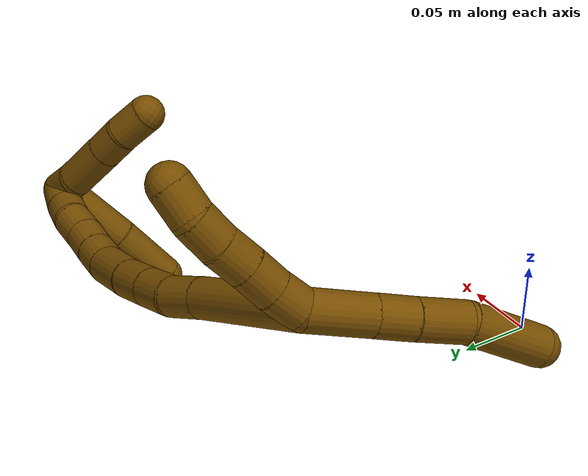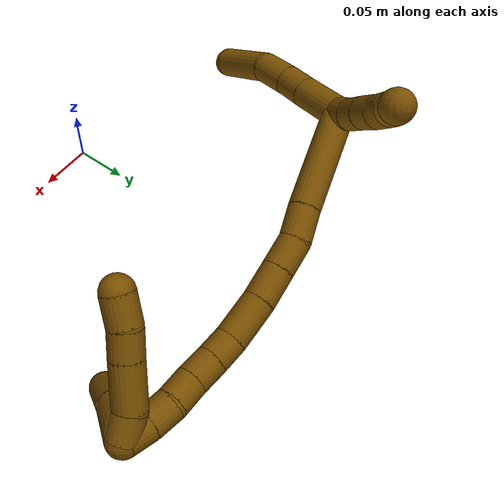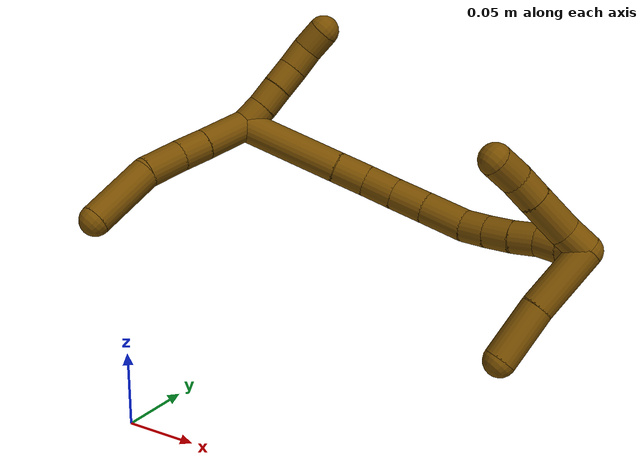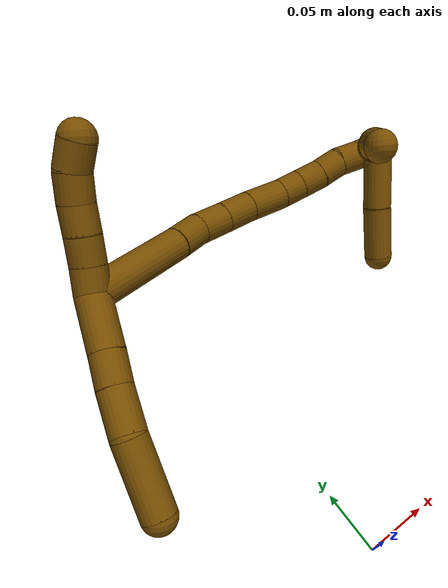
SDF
<sdf version="1.7">
 <world name="default">
  <model name="12">
   <static>0</static>
   <link name="12">
    <collision name="collision-cylinder-e_1_2_8">
     <pose>-0.001433 -0.009807 -0.017662 2.63473 -0.070803 -0.271799</pose>
     <geometry><cylinder><radius>0.0125</radius><length>0.040506</length></cylinder></geometry>
     <surface>
      <friction><ode><mu>1.16</mu><mu2>1.16</mu2><slip1>0</slip1><slip2>0</slip2></ode></friction>
      <contact><ode><kp>1e+06</kp><kd>1</kd><max_vel>0</max_vel><min_depth>0.001</min_depth></ode></contact>
     </surface>
    </collision>
    <visual name="visual-cylinder-e_1_2_8">
     <pose>-0.001433 -0.009807 -0.017662 2.63473 -0.070803 -0.271799</pose>
     <geometry><cylinder><radius>0.0125</radius><length>0.040506</length></cylinder></geometry>
     <material><ambient>0.466667 0.301961 0 1</ambient></material>
    </visual>
    <collision name="collision-cylinder-e_2_8_9">
     <pose>-0.004006 -0.0253 -0.045598 2.63609 -0.096826 -0.370877</pose>
     <geometry><cylinder><radius>0.0125</radius><length>0.023595</length></cylinder></geometry>
     <surface>
      <friction><ode><mu>1.16</mu><mu2>1.16</mu2><slip1>0</slip1><slip2>0</slip2></ode></friction>
      <contact><ode><kp>1e+06</kp><kd>1</kd><max_vel>0</max_vel><min_depth>0.001</min_depth></ode></contact>
     </surface>
    </collision>
    <visual name="visual-cylinder-e_2_8_9">
     <pose>-0.004006 -0.0253 -0.045598 2.63609 -0.096826 -0.370877</pose>
     <geometry><cylinder><radius>0.0125</radius><length>0.023595</length></cylinder></geometry>
     <material><ambient>0.466667 0.301961 0 1</ambient></material>
    </visual>
    <collision name="collision-cylinder-e_3_9_10">
     <pose>-0.005791 -0.038856 -0.069536 2.61908 -0.040862 -0.152555</pose>
     <geometry><cylinder><radius>0.0125</radius><length>0.031564</length></cylinder></geometry>
     <surface>
      <friction><ode><mu>1.16</mu><mu2>1.16</mu2><slip1>0</slip1><slip2>0</slip2></ode></friction>
      <contact><ode><kp>1e+06</kp><kd>1</kd><max_vel>0</max_vel><min_depth>0.001</min_depth></ode></contact>
     </surface>
    </collision>
    <visual name="visual-cylinder-e_3_9_10">
     <pose>-0.005791 -0.038856 -0.069536 2.61908 -0.040862 -0.152555</pose>
     <geometry><cylinder><radius>0.0125</radius><length>0.031564</length></cylinder></geometry>
     <material><ambient>0.466667 0.301961 0 1</ambient></material>
    </visual>
    <collision name="collision-cylinder-e_4_10_6">
     <pose>-0.003051 -0.054351 -0.109056 2.85478 0.124914 0.817424</pose>
     <geometry><cylinder><radius>0.0125</radius><length>0.054335</length></cylinder></geometry>
     <surface>
      <friction><ode><mu>1.16</mu><mu2>1.16</mu2><slip1>0</slip1><slip2>0</slip2></ode></friction>
      <contact><ode><kp>1e+06</kp><kd>1</kd><max_vel>0</max_vel><min_depth>0.001</min_depth></ode></contact>
     </surface>
    </collision>
    <visual name="visual-cylinder-e_4_10_6">
     <pose>-0.003051 -0.054351 -0.109056 2.85478 0.124914 0.817424</pose>
     <geometry><cylinder><radius>0.0125</radius><length>0.054335</length></cylinder></geometry>
     <material><ambient>0.466667 0.301961 0 1</ambient></material>
    </visual>
    <collision name="collision-cylinder-e_1_2_11">
     <pose>8.2e-05 0.000133 0.009999 -0.013305 0.00823 -5.5e-05</pose>
     <geometry><cylinder><radius>0.0125</radius><length>0.02</length></cylinder></geometry>
     <surface>
      <friction><ode><mu>1.16</mu><mu2>1.16</mu2><slip1>0</slip1><slip2>0</slip2></ode></friction>
      <contact><ode><kp>1e+06</kp><kd>1</kd><max_vel>0</max_vel><min_depth>0.001</min_depth></ode></contact>
     </surface>
    </collision>
    <visual name="visual-cylinder-e_1_2_11">
     <pose>8.2e-05 0.000133 0.009999 -0.013305 0.00823 -5.5e-05</pose>
     <geometry><cylinder><radius>0.0125</radius><length>0.02</length></cylinder></geometry>
     <material><ambient>0.466667 0.301961 0 1</ambient></material>
    </visual>
    <collision name="collision-cylinder-e_2_11_12">
     <pose>-0.000418 -0.000508 0.029951 0.077619 -0.058255 -0.002263</pose>
     <geometry><cylinder><radius>0.0125</radius><length>0.02</length></cylinder></geometry>
     <surface>
      <friction><ode><mu>1.16</mu><mu2>1.16</mu2><slip1>0</slip1><slip2>0</slip2></ode></friction>
      <contact><ode><kp>1e+06</kp><kd>1</kd><max_vel>0</max_vel><min_depth>0.001</min_depth></ode></contact>
     </surface>
    </collision>
    <visual name="visual-cylinder-e_2_11_12">
     <pose>-0.000418 -0.000508 0.029951 0.077619 -0.058255 -0.002263</pose>
     <geometry><cylinder><radius>0.0125</radius><length>0.02</length></cylinder></geometry>
     <material><ambient>0.466667 0.301961 0 1</ambient></material>
    </visual>
    <collision name="collision-cylinder-e_3_12_13">
     <pose>-0.001635 -0.001643 0.049877 0.036204 -0.063539 -0.001151</pose>
     <geometry><cylinder><radius>0.0125</radius><length>0.02</length></cylinder></geometry>
     <surface>
      <friction><ode><mu>1.16</mu><mu2>1.16</mu2><slip1>0</slip1><slip2>0</slip2></ode></friction>
      <contact><ode><kp>1e+06</kp><kd>1</kd><max_vel>0</max_vel><min_depth>0.001</min_depth></ode></contact>
     </surface>
    </collision>
    <visual name="visual-cylinder-e_3_12_13">
     <pose>-0.001635 -0.001643 0.049877 0.036204 -0.063539 -0.001151</pose>
     <geometry><cylinder><radius>0.0125</radius><length>0.02</length></cylinder></geometry>
     <material><ambient>0.466667 0.301961 0 1</ambient></material>
    </visual>
    <collision name="collision-cylinder-e_4_13_14">
     <pose>-0.002516 -0.003565 0.069724 0.156762 -0.024621 -0.001934</pose>
     <geometry><cylinder><radius>0.0125</radius><length>0.02</length></cylinder></geometry>
     <surface>
      <friction><ode><mu>1.16</mu><mu2>1.16</mu2><slip1>0</slip1><slip2>0</slip2></ode></friction>
      <contact><ode><kp>1e+06</kp><kd>1</kd><max_vel>0</max_vel><min_depth>0.001</min_depth></ode></contact>
     </surface>
    </collision>
    <visual name="visual-cylinder-e_4_13_14">
     <pose>-0.002516 -0.003565 0.069724 0.156762 -0.024621 -0.001934</pose>
     <geometry><cylinder><radius>0.0125</radius><length>0.02</length></cylinder></geometry>
     <material><ambient>0.466667 0.301961 0 1</ambient></material>
    </visual>
    <collision name="collision-cylinder-e_5_14_5">
     <pose>-0.00087 -0.008597 0.088784 0.361288 0.190374 0.034871</pose>
     <geometry><cylinder><radius>0.0125</radius><length>0.02</length></cylinder></geometry>
     <surface>
      <friction><ode><mu>1.16</mu><mu2>1.16</mu2><slip1>0</slip1><slip2>0</slip2></ode></friction>
      <contact><ode><kp>1e+06</kp><kd>1</kd><max_vel>0</max_vel><min_depth>0.001</min_depth></ode></contact>
     </surface>
    </collision>
    <visual name="visual-cylinder-e_5_14_5">
     <pose>-0.00087 -0.008597 0.088784 0.361288 0.190374 0.034871</pose>
     <geometry><cylinder><radius>0.0125</radius><length>0.02</length></cylinder></geometry>
     <material><ambient>0.466667 0.301961 0 1</ambient></material>
    </visual>
    <collision name="collision-cylinder-e_1_2_15">
     <pose>0.037975 0.010766 0.011419 -0.755953 1.1789 -0.519106</pose>
     <geometry><cylinder><radius>0.0125</radius><length>0.082181</length></cylinder></geometry>
     <surface>
      <friction><ode><mu>1.16</mu><mu2>1.16</mu2><slip1>0</slip1><slip2>0</slip2></ode></friction>
      <contact><ode><kp>1e+06</kp><kd>1</kd><max_vel>0</max_vel><min_depth>0.001</min_depth></ode></contact>
     </surface>
    </collision>
    <visual name="visual-cylinder-e_1_2_15">
     <pose>0.037975 0.010766 0.011419 -0.755953 1.1789 -0.519106</pose>
     <geometry><cylinder><radius>0.0125</radius><length>0.082181</length></cylinder></geometry>
     <material><ambient>0.466667 0.301961 0 1</ambient></material>
    </visual>
    <collision name="collision-cylinder-e_2_15_16">
     <pose>0.087825 0.025753 0.026704 -0.829437 1.12168 -0.539579</pose>
     <geometry><cylinder><radius>0.0125</radius><length>0.026365</length></cylinder></geometry>
     <surface>
      <friction><ode><mu>1.16</mu><mu2>1.16</mu2><slip1>0</slip1><slip2>0</slip2></ode></friction>
      <contact><ode><kp>1e+06</kp><kd>1</kd><max_vel>0</max_vel><min_depth>0.001</min_depth></ode></contact>
     </surface>
    </collision>
    <visual name="visual-cylinder-e_2_15_16">
     <pose>0.087825 0.025753 0.026704 -0.829437 1.12168 -0.539579</pose>
     <geometry><cylinder><radius>0.0125</radius><length>0.026365</length></cylinder></geometry>
     <material><ambient>0.466667 0.301961 0 1</ambient></material>
    </visual>
    <collision name="collision-cylinder-e_3_16_17">
     <pose>0.112256 0.031087 0.033552 -0.356811 1.32244 -0.278784</pose>
     <geometry><cylinder><radius>0.0125</radius><length>0.025906</length></cylinder></geometry>
     <surface>
      <friction><ode><mu>1.16</mu><mu2>1.16</mu2><slip1>0</slip1><slip2>0</slip2></ode></friction>
      <contact><ode><kp>1e+06</kp><kd>1</kd><max_vel>0</max_vel><min_depth>0.001</min_depth></ode></contact>
     </surface>
    </collision>
    <visual name="visual-cylinder-e_3_16_17">
     <pose>0.112256 0.031087 0.033552 -0.356811 1.32244 -0.278784</pose>
     <geometry><cylinder><radius>0.0125</radius><length>0.025906</length></cylinder></geometry>
     <material><ambient>0.466667 0.301961 0 1</ambient></material>
    </visual>
    <collision name="collision-cylinder-e_4_17_18">
     <pose>0.138053 0.03327 0.039804 -0.316768 1.31666 -0.245824</pose>
     <geometry><cylinder><radius>0.0125</radius><length>0.027362</length></cylinder></geometry>
     <surface>
      <friction><ode><mu>1.16</mu><mu2>1.16</mu2><slip1>0</slip1><slip2>0</slip2></ode></friction>
      <contact><ode><kp>1e+06</kp><kd>1</kd><max_vel>0</max_vel><min_depth>0.001</min_depth></ode></contact>
     </surface>
    </collision>
    <visual name="visual-cylinder-e_4_17_18">
     <pose>0.138053 0.03327 0.039804 -0.316768 1.31666 -0.245824</pose>
     <geometry><cylinder><radius>0.0125</radius><length>0.027362</length></cylinder></geometry>
     <material><ambient>0.466667 0.301961 0 1</ambient></material>
    </visual>
    <collision name="collision-cylinder-e_5_18_19">
     <pose>0.16848 0.034213 0.0468 0.034581 1.35708 0.027882</pose>
     <geometry><cylinder><radius>0.0125</radius><length>0.035172</length></cylinder></geometry>
     <surface>
      <friction><ode><mu>1.16</mu><mu2>1.16</mu2><slip1>0</slip1><slip2>0</slip2></ode></friction>
      <contact><ode><kp>1e+06</kp><kd>1</kd><max_vel>0</max_vel><min_depth>0.001</min_depth></ode></contact>
     </surface>
    </collision>
    <visual name="visual-cylinder-e_5_18_19">
     <pose>0.16848 0.034213 0.0468 0.034581 1.35708 0.027882</pose>
     <geometry><cylinder><radius>0.0125</radius><length>0.035172</length></cylinder></geometry>
     <material><ambient>0.466667 0.301961 0 1</ambient></material>
    </visual>
    <collision name="collision-cylinder-e_6_19_20">
     <pose>0.195031 0.032248 0.053802 0.510969 1.18952 0.349768</pose>
     <geometry><cylinder><radius>0.0125</radius><length>0.020179</length></cylinder></geometry>
     <surface>
      <friction><ode><mu>1.16</mu><mu2>1.16</mu2><slip1>0</slip1><slip2>0</slip2></ode></friction>
      <contact><ode><kp>1e+06</kp><kd>1</kd><max_vel>0</max_vel><min_depth>0.001</min_depth></ode></contact>
     </surface>
    </collision>
    <visual name="visual-cylinder-e_6_19_20">
     <pose>0.195031 0.032248 0.053802 0.510969 1.18952 0.349768</pose>
     <geometry><cylinder><radius>0.0125</radius><length>0.020179</length></cylinder></geometry>
     <material><ambient>0.466667 0.301961 0 1</ambient></material>
    </visual>
    <collision name="collision-cylinder-e_7_20_21">
     <pose>0.214109 0.027981 0.060744 0.585333 1.14545 0.383812</pose>
     <geometry><cylinder><radius>0.0125</radius><length>0.021326</length></cylinder></geometry>
     <surface>
      <friction><ode><mu>1.16</mu><mu2>1.16</mu2><slip1>0</slip1><slip2>0</slip2></ode></friction>
      <contact><ode><kp>1e+06</kp><kd>1</kd><max_vel>0</max_vel><min_depth>0.001</min_depth></ode></contact>
     </surface>
    </collision>
    <visual name="visual-cylinder-e_7_20_21">
     <pose>0.214109 0.027981 0.060744 0.585333 1.14545 0.383812</pose>
     <geometry><cylinder><radius>0.0125</radius><length>0.021326</length></cylinder></geometry>
     <material><ambient>0.466667 0.301961 0 1</ambient></material>
    </visual>
    <collision name="collision-cylinder-e_8_21_22">
     <pose>0.233029 0.023368 0.068889 0.453357 1.07494 0.273211</pose>
     <geometry><cylinder><radius>0.0125</radius><length>0.020937</length></cylinder></geometry>
     <surface>
      <friction><ode><mu>1.16</mu><mu2>1.16</mu2><slip1>0</slip1><slip2>0</slip2></ode></friction>
      <contact><ode><kp>1e+06</kp><kd>1</kd><max_vel>0</max_vel><min_depth>0.001</min_depth></ode></contact>
     </surface>
    </collision>
    <visual name="visual-cylinder-e_8_21_22">
     <pose>0.233029 0.023368 0.068889 0.453357 1.07494 0.273211</pose>
     <geometry><cylinder><radius>0.0125</radius><length>0.020937</length></cylinder></geometry>
     <material><ambient>0.466667 0.301961 0 1</ambient></material>
    </visual>
    <collision name="collision-cylinder-e_9_22_23">
     <pose>0.251827 0.018458 0.075685 0.866793 1.21345 0.621519</pose>
     <geometry><cylinder><radius>0.0125</radius><length>0.020474</length></cylinder></geometry>
     <surface>
      <friction><ode><mu>1.16</mu><mu2>1.16</mu2><slip1>0</slip1><slip2>0</slip2></ode></friction>
      <contact><ode><kp>1e+06</kp><kd>1</kd><max_vel>0</max_vel><min_depth>0.001</min_depth></ode></contact>
     </surface>
    </collision>
    <visual name="visual-cylinder-e_9_22_23">
     <pose>0.251827 0.018458 0.075685 0.866793 1.21345 0.621519</pose>
     <geometry><cylinder><radius>0.0125</radius><length>0.020474</length></cylinder></geometry>
     <material><ambient>0.466667 0.301961 0 1</ambient></material>
    </visual>
    <collision name="collision-cylinder-e_10_23_1">
     <pose>0.269909 0.011307 0.081058 0.966117 1.00658 0.562271</pose>
     <geometry><cylinder><radius>0.0125</radius><length>0.0201</length></cylinder></geometry>
     <surface>
      <friction><ode><mu>1.16</mu><mu2>1.16</mu2><slip1>0</slip1><slip2>0</slip2></ode></friction>
      <contact><ode><kp>1e+06</kp><kd>1</kd><max_vel>0</max_vel><min_depth>0.001</min_depth></ode></contact>
     </surface>
    </collision>
    <visual name="visual-cylinder-e_10_23_1">
     <pose>0.269909 0.011307 0.081058 0.966117 1.00658 0.562271</pose>
     <geometry><cylinder><radius>0.0125</radius><length>0.0201</length></cylinder></geometry>
     <material><ambient>0.466667 0.301961 0 1</ambient></material>
    </visual>
    <collision name="collision-cylinder-e_1_1_24">
     <pose>0.269317 0.001638 0.084047 1.58327 -1.04697 -1.05781</pose>
     <geometry><cylinder><radius>0.0125</radius><length>0.020982</length></cylinder></geometry>
     <surface>
      <friction><ode><mu>1.16</mu><mu2>1.16</mu2><slip1>0</slip1><slip2>0</slip2></ode></friction>
      <contact><ode><kp>1e+06</kp><kd>1</kd><max_vel>0</max_vel><min_depth>0.001</min_depth></ode></contact>
     </surface>
    </collision>
    <visual name="visual-cylinder-e_1_1_24">
     <pose>0.269317 0.001638 0.084047 1.58327 -1.04697 -1.05781</pose>
     <geometry><cylinder><radius>0.0125</radius><length>0.020982</length></cylinder></geometry>
     <material><ambient>0.466667 0.301961 0 1</ambient></material>
    </visual>
    <collision name="collision-cylinder-e_2_24_25">
     <pose>0.248126 -0.016416 0.083829 1.58272 -0.757282 -0.765511</pose>
     <geometry><cylinder><radius>0.0125</radius><length>0.035249</length></cylinder></geometry>
     <surface>
      <friction><ode><mu>1.16</mu><mu2>1.16</mu2><slip1>0</slip1><slip2>0</slip2></ode></friction>
      <contact><ode><kp>1e+06</kp><kd>1</kd><max_vel>0</max_vel><min_depth>0.001</min_depth></ode></contact>
     </surface>
    </collision>
    <visual name="visual-cylinder-e_2_24_25">
     <pose>0.248126 -0.016416 0.083829 1.58272 -0.757282 -0.765511</pose>
     <geometry><cylinder><radius>0.0125</radius><length>0.035249</length></cylinder></geometry>
     <material><ambient>0.466667 0.301961 0 1</ambient></material>
    </visual>
    <collision name="collision-cylinder-e_3_25_26">
     <pose>0.228778 -0.036592 0.083737 1.56264 -0.776617 -0.770918</pose>
     <geometry><cylinder><radius>0.0125</radius><length>0.020663</length></cylinder></geometry>
     <surface>
      <friction><ode><mu>1.16</mu><mu2>1.16</mu2><slip1>0</slip1><slip2>0</slip2></ode></friction>
      <contact><ode><kp>1e+06</kp><kd>1</kd><max_vel>0</max_vel><min_depth>0.001</min_depth></ode></contact>
     </surface>
    </collision>
    <visual name="visual-cylinder-e_3_25_26">
     <pose>0.228778 -0.036592 0.083737 1.56264 -0.776617 -0.770918</pose>
     <geometry><cylinder><radius>0.0125</radius><length>0.020663</length></cylinder></geometry>
     <material><ambient>0.466667 0.301961 0 1</ambient></material>
    </visual>
    <collision name="collision-cylinder-e_4_26_4">
     <pose>0.214845 -0.05329 0.082506 1.70826 -0.617754 -0.702191</pose>
     <geometry><cylinder><radius>0.0125</radius><length>0.023106</length></cylinder></geometry>
     <surface>
      <friction><ode><mu>1.16</mu><mu2>1.16</mu2><slip1>0</slip1><slip2>0</slip2></ode></friction>
      <contact><ode><kp>1e+06</kp><kd>1</kd><max_vel>0</max_vel><min_depth>0.001</min_depth></ode></contact>
     </surface>
    </collision>
    <visual name="visual-cylinder-e_4_26_4">
     <pose>0.214845 -0.05329 0.082506 1.70826 -0.617754 -0.702191</pose>
     <geometry><cylinder><radius>0.0125</radius><length>0.023106</length></cylinder></geometry>
     <material><ambient>0.466667 0.301961 0 1</ambient></material>
    </visual>
    <collision name="collision-cylinder-e_1_1_27">
     <pose>0.278104 0.008393 0.057047 -3.08596 -0.010965 0.389129</pose>
     <geometry><cylinder><radius>0.0125</radius><length>0.054219</length></cylinder></geometry>
     <surface>
      <friction><ode><mu>1.16</mu><mu2>1.16</mu2><slip1>0</slip1><slip2>0</slip2></ode></friction>
      <contact><ode><kp>1e+06</kp><kd>1</kd><max_vel>0</max_vel><min_depth>0.001</min_depth></ode></contact>
     </surface>
    </collision>
    <visual name="visual-cylinder-e_1_1_27">
     <pose>0.278104 0.008393 0.057047 -3.08596 -0.010965 0.389129</pose>
     <geometry><cylinder><radius>0.0125</radius><length>0.054219</length></cylinder></geometry>
     <material><ambient>0.466667 0.301961 0 1</ambient></material>
    </visual>
    <collision name="collision-cylinder-e_2_27_3">
     <pose>0.279478 0.01192 0.007241 -3.05297 0.073074 -1.3789</pose>
     <geometry><cylinder><radius>0.0125</radius><length>0.045781</length></cylinder></geometry>
     <surface>
      <friction><ode><mu>1.16</mu><mu2>1.16</mu2><slip1>0</slip1><slip2>0</slip2></ode></friction>
      <contact><ode><kp>1e+06</kp><kd>1</kd><max_vel>0</max_vel><min_depth>0.001</min_depth></ode></contact>
     </surface>
    </collision>
    <visual name="visual-cylinder-e_2_27_3">
     <pose>0.279478 0.01192 0.007241 -3.05297 0.073074 -1.3789</pose>
     <geometry><cylinder><radius>0.0125</radius><length>0.045781</length></cylinder></geometry>
     <material><ambient>0.466667 0.301961 0 1</ambient></material>
    </visual>
    <collision name="collision-sphere-3">
     <pose>0.28115 0.013941 -0.015499 0 -0 0</pose>
     <geometry><sphere><radius>0.0125</radius></sphere></geometry>
     <surface>
      <friction><ode><mu>1.16</mu><mu2>1.16</mu2><slip1>0</slip1><slip2>0</slip2></ode></friction>
      <contact><ode><kp>1e+06</kp><kd>1</kd><max_vel>0</max_vel><min_depth>0.001</min_depth></ode></contact>
     </surface>
    </collision>
    <visual name="visual-sphere-3">
     <pose>0.28115 0.013941 -0.015499 0 -0 0</pose>
     <geometry><sphere><radius>0.0125</radius></sphere></geometry>
     <material><ambient>0.466667 0.301961 0 1</ambient></material>
    </visual>
    <collision name="collision-sphere-27">
     <pose>0.277807 0.0099 0.029981 0 -0 0</pose>
     <geometry><sphere><radius>0.0125</radius></sphere></geometry>
     <surface>
      <friction><ode><mu>1.16</mu><mu2>1.16</mu2><slip1>0</slip1><slip2>0</slip2></ode></friction>
      <contact><ode><kp>1e+06</kp><kd>1</kd><max_vel>0</max_vel><min_depth>0.001</min_depth></ode></contact>
     </surface>
    </collision>
    <visual name="visual-sphere-27">
     <pose>0.277807 0.0099 0.029981 0 -0 0</pose>
     <geometry><sphere><radius>0.0125</radius></sphere></geometry>
     <material><ambient>0.466667 0.301961 0 1</ambient></material>
    </visual>
    <collision name="collision-sphere-4">
     <pose>0.208154 -0.062619 0.081216 0 -0 0</pose>
     <geometry><sphere><radius>0.0125</radius></sphere></geometry>
     <surface>
      <friction><ode><mu>1.16</mu><mu2>1.16</mu2><slip1>0</slip1><slip2>0</slip2></ode></friction>
      <contact><ode><kp>1e+06</kp><kd>1</kd><max_vel>0</max_vel><min_depth>0.001</min_depth></ode></contact>
     </surface>
    </collision>
    <visual name="visual-sphere-4">
     <pose>0.208154 -0.062619 0.081216 0 -0 0</pose>
     <geometry><sphere><radius>0.0125</radius></sphere></geometry>
     <material><ambient>0.466667 0.301961 0 1</ambient></material>
    </visual>
    <collision name="collision-sphere-26">
     <pose>0.221537 -0.043961 0.083797 0 -0 0</pose>
     <geometry><sphere><radius>0.0125</radius></sphere></geometry>
     <surface>
      <friction><ode><mu>1.16</mu><mu2>1.16</mu2><slip1>0</slip1><slip2>0</slip2></ode></friction>
      <contact><ode><kp>1e+06</kp><kd>1</kd><max_vel>0</max_vel><min_depth>0.001</min_depth></ode></contact>
     </surface>
    </collision>
    <visual name="visual-sphere-26">
     <pose>0.221537 -0.043961 0.083797 0 -0 0</pose>
     <geometry><sphere><radius>0.0125</radius></sphere></geometry>
     <material><ambient>0.466667 0.301961 0 1</ambient></material>
    </visual>
    <collision name="collision-sphere-25">
     <pose>0.236019 -0.029223 0.083676 0 -0 0</pose>
     <geometry><sphere><radius>0.0125</radius></sphere></geometry>
     <surface>
      <friction><ode><mu>1.16</mu><mu2>1.16</mu2><slip1>0</slip1><slip2>0</slip2></ode></friction>
      <contact><ode><kp>1e+06</kp><kd>1</kd><max_vel>0</max_vel><min_depth>0.001</min_depth></ode></contact>
     </surface>
    </collision>
    <visual name="visual-sphere-25">
     <pose>0.236019 -0.029223 0.083676 0 -0 0</pose>
     <geometry><sphere><radius>0.0125</radius></sphere></geometry>
     <material><ambient>0.466667 0.301961 0 1</ambient></material>
    </visual>
    <collision name="collision-sphere-24">
     <pose>0.260233 -0.003609 0.083982 0 -0 0</pose>
     <geometry><sphere><radius>0.0125</radius></sphere></geometry>
     <surface>
      <friction><ode><mu>1.16</mu><mu2>1.16</mu2><slip1>0</slip1><slip2>0</slip2></ode></friction>
      <contact><ode><kp>1e+06</kp><kd>1</kd><max_vel>0</max_vel><min_depth>0.001</min_depth></ode></contact>
     </surface>
    </collision>
    <visual name="visual-sphere-24">
     <pose>0.260233 -0.003609 0.083982 0 -0 0</pose>
     <geometry><sphere><radius>0.0125</radius></sphere></geometry>
     <material><ambient>0.466667 0.301961 0 1</ambient></material>
    </visual>
    <collision name="collision-sphere-1">
     <pose>0.278402 0.006885 0.084113 0 -0 0</pose>
     <geometry><sphere><radius>0.0125</radius></sphere></geometry>
     <surface>
      <friction><ode><mu>1.16</mu><mu2>1.16</mu2><slip1>0</slip1><slip2>0</slip2></ode></friction>
      <contact><ode><kp>1e+06</kp><kd>1</kd><max_vel>0</max_vel><min_depth>0.001</min_depth></ode></contact>
     </surface>
    </collision>
    <visual name="visual-sphere-1">
     <pose>0.278402 0.006885 0.084113 0 -0 0</pose>
     <geometry><sphere><radius>0.0125</radius></sphere></geometry>
     <material><ambient>0.466667 0.301961 0 1</ambient></material>
    </visual>
    <collision name="collision-sphere-23">
     <pose>0.261417 0.015728 0.078002 0 -0 0</pose>
     <geometry><sphere><radius>0.0125</radius></sphere></geometry>
     <surface>
      <friction><ode><mu>1.16</mu><mu2>1.16</mu2><slip1>0</slip1><slip2>0</slip2></ode></friction>
      <contact><ode><kp>1e+06</kp><kd>1</kd><max_vel>0</max_vel><min_depth>0.001</min_depth></ode></contact>
     </surface>
    </collision>
    <visual name="visual-sphere-23">
     <pose>0.261417 0.015728 0.078002 0 -0 0</pose>
     <geometry><sphere><radius>0.0125</radius></sphere></geometry>
     <material><ambient>0.466667 0.301961 0 1</ambient></material>
    </visual>
    <collision name="collision-sphere-22">
     <pose>0.242237 0.021187 0.073367 0 -0 0</pose>
     <geometry><sphere><radius>0.0125</radius></sphere></geometry>
     <surface>
      <friction><ode><mu>1.16</mu><mu2>1.16</mu2><slip1>0</slip1><slip2>0</slip2></ode></friction>
      <contact><ode><kp>1e+06</kp><kd>1</kd><max_vel>0</max_vel><min_depth>0.001</min_depth></ode></contact>
     </surface>
    </collision>
    <visual name="visual-sphere-22">
     <pose>0.242237 0.021187 0.073367 0 -0 0</pose>
     <geometry><sphere><radius>0.0125</radius></sphere></geometry>
     <material><ambient>0.466667 0.301961 0 1</ambient></material>
    </visual>
    <collision name="collision-sphere-21">
     <pose>0.223822 0.02555 0.064412 0 -0 0</pose>
     <geometry><sphere><radius>0.0125</radius></sphere></geometry>
     <surface>
      <friction><ode><mu>1.16</mu><mu2>1.16</mu2><slip1>0</slip1><slip2>0</slip2></ode></friction>
      <contact><ode><kp>1e+06</kp><kd>1</kd><max_vel>0</max_vel><min_depth>0.001</min_depth></ode></contact>
     </surface>
    </collision>
    <visual name="visual-sphere-21">
     <pose>0.223822 0.02555 0.064412 0 -0 0</pose>
     <geometry><sphere><radius>0.0125</radius></sphere></geometry>
     <material><ambient>0.466667 0.301961 0 1</ambient></material>
    </visual>
    <collision name="collision-sphere-11">
     <pose>0.000165 0.000266 0.019998 0 -0 0</pose>
     <geometry><sphere><radius>0.0125</radius></sphere></geometry>
     <surface>
      <friction><ode><mu>1.16</mu><mu2>1.16</mu2><slip1>0</slip1><slip2>0</slip2></ode></friction>
      <contact><ode><kp>1e+06</kp><kd>1</kd><max_vel>0</max_vel><min_depth>0.001</min_depth></ode></contact>
     </surface>
    </collision>
    <visual name="visual-sphere-11">
     <pose>0.000165 0.000266 0.019998 0 -0 0</pose>
     <geometry><sphere><radius>0.0125</radius></sphere></geometry>
     <material><ambient>0.466667 0.301961 0 1</ambient></material>
    </visual>
    <collision name="collision-sphere-6">
     <pose>0.000334 -0.061977 -0.134911 0 -0 0</pose>
     <geometry><sphere><radius>0.0125</radius></sphere></geometry>
     <surface>
      <friction><ode><mu>1.16</mu><mu2>1.16</mu2><slip1>0</slip1><slip2>0</slip2></ode></friction>
      <contact><ode><kp>1e+06</kp><kd>1</kd><max_vel>0</max_vel><min_depth>0.001</min_depth></ode></contact>
     </surface>
    </collision>
    <visual name="visual-sphere-6">
     <pose>0.000334 -0.061977 -0.134911 0 -0 0</pose>
     <geometry><sphere><radius>0.0125</radius></sphere></geometry>
     <material><ambient>0.466667 0.301961 0 1</ambient></material>
    </visual>
    <collision name="collision-sphere-10">
     <pose>-0.006436 -0.046725 -0.083201 0 -0 0</pose>
     <geometry><sphere><radius>0.0125</radius></sphere></geometry>
     <surface>
      <friction><ode><mu>1.16</mu><mu2>1.16</mu2><slip1>0</slip1><slip2>0</slip2></ode></friction>
      <contact><ode><kp>1e+06</kp><kd>1</kd><max_vel>0</max_vel><min_depth>0.001</min_depth></ode></contact>
     </surface>
    </collision>
    <visual name="visual-sphere-10">
     <pose>-0.006436 -0.046725 -0.083201 0 -0 0</pose>
     <geometry><sphere><radius>0.0125</radius></sphere></geometry>
     <material><ambient>0.466667 0.301961 0 1</ambient></material>
    </visual>
    <collision name="collision-sphere-9">
     <pose>-0.005147 -0.030986 -0.055872 0 -0 0</pose>
     <geometry><sphere><radius>0.0125</radius></sphere></geometry>
     <surface>
      <friction><ode><mu>1.16</mu><mu2>1.16</mu2><slip1>0</slip1><slip2>0</slip2></ode></friction>
      <contact><ode><kp>1e+06</kp><kd>1</kd><max_vel>0</max_vel><min_depth>0.001</min_depth></ode></contact>
     </surface>
    </collision>
    <visual name="visual-sphere-9">
     <pose>-0.005147 -0.030986 -0.055872 0 -0 0</pose>
     <geometry><sphere><radius>0.0125</radius></sphere></geometry>
     <material><ambient>0.466667 0.301961 0 1</ambient></material>
    </visual>
    <collision name="collision-sphere-2">
     <geometry><sphere><radius>0.0125</radius></sphere></geometry>
     <surface>
      <friction><ode><mu>1.16</mu><mu2>1.16</mu2><slip1>0</slip1><slip2>0</slip2></ode></friction>
      <contact><ode><kp>1e+06</kp><kd>1</kd><max_vel>0</max_vel><min_depth>0.001</min_depth></ode></contact>
     </surface>
    </collision>
    <visual name="visual-sphere-2">
     <geometry><sphere><radius>0.0125</radius></sphere></geometry>
     <material><ambient>0.466667 0.301961 0 1</ambient></material>
    </visual>
    <collision name="collision-sphere-19">
     <pose>0.185666 0.034084 0.050527 0 -0 0</pose>
     <geometry><sphere><radius>0.0125</radius></sphere></geometry>
     <surface>
      <friction><ode><mu>1.16</mu><mu2>1.16</mu2><slip1>0</slip1><slip2>0</slip2></ode></friction>
      <contact><ode><kp>1e+06</kp><kd>1</kd><max_vel>0</max_vel><min_depth>0.001</min_depth></ode></contact>
     </surface>
    </collision>
    <visual name="visual-sphere-19">
     <pose>0.185666 0.034084 0.050527 0 -0 0</pose>
     <geometry><sphere><radius>0.0125</radius></sphere></geometry>
     <material><ambient>0.466667 0.301961 0 1</ambient></material>
    </visual>
    <collision name="collision-sphere-8">
     <pose>-0.002866 -0.019614 -0.035324 0 -0 0</pose>
     <geometry><sphere><radius>0.0125</radius></sphere></geometry>
     <surface>
      <friction><ode><mu>1.16</mu><mu2>1.16</mu2><slip1>0</slip1><slip2>0</slip2></ode></friction>
      <contact><ode><kp>1e+06</kp><kd>1</kd><max_vel>0</max_vel><min_depth>0.001</min_depth></ode></contact>
     </surface>
    </collision>
    <visual name="visual-sphere-8">
     <pose>-0.002866 -0.019614 -0.035324 0 -0 0</pose>
     <geometry><sphere><radius>0.0125</radius></sphere></geometry>
     <material><ambient>0.466667 0.301961 0 1</ambient></material>
    </visual>
    <collision name="collision-sphere-12">
     <pose>-0.001 -0.001282 0.039904 0 -0 0</pose>
     <geometry><sphere><radius>0.0125</radius></sphere></geometry>
     <surface>
      <friction><ode><mu>1.16</mu><mu2>1.16</mu2><slip1>0</slip1><slip2>0</slip2></ode></friction>
      <contact><ode><kp>1e+06</kp><kd>1</kd><max_vel>0</max_vel><min_depth>0.001</min_depth></ode></contact>
     </surface>
    </collision>
    <visual name="visual-sphere-12">
     <pose>-0.001 -0.001282 0.039904 0 -0 0</pose>
     <geometry><sphere><radius>0.0125</radius></sphere></geometry>
     <material><ambient>0.466667 0.301961 0 1</ambient></material>
    </visual>
    <collision name="collision-sphere-13">
     <pose>-0.00227 -0.002005 0.05985 0 -0 0</pose>
     <geometry><sphere><radius>0.0125</radius></sphere></geometry>
     <surface>
      <friction><ode><mu>1.16</mu><mu2>1.16</mu2><slip1>0</slip1><slip2>0</slip2></ode></friction>
      <contact><ode><kp>1e+06</kp><kd>1</kd><max_vel>0</max_vel><min_depth>0.001</min_depth></ode></contact>
     </surface>
    </collision>
    <visual name="visual-sphere-13">
     <pose>-0.00227 -0.002005 0.05985 0 -0 0</pose>
     <geometry><sphere><radius>0.0125</radius></sphere></geometry>
     <material><ambient>0.466667 0.301961 0 1</ambient></material>
    </visual>
    <collision name="collision-sphere-14">
     <pose>-0.002762 -0.005126 0.079599 0 -0 0</pose>
     <geometry><sphere><radius>0.0125</radius></sphere></geometry>
     <surface>
      <friction><ode><mu>1.16</mu><mu2>1.16</mu2><slip1>0</slip1><slip2>0</slip2></ode></friction>
      <contact><ode><kp>1e+06</kp><kd>1</kd><max_vel>0</max_vel><min_depth>0.001</min_depth></ode></contact>
     </surface>
    </collision>
    <visual name="visual-sphere-14">
     <pose>-0.002762 -0.005126 0.079599 0 -0 0</pose>
     <geometry><sphere><radius>0.0125</radius></sphere></geometry>
     <material><ambient>0.466667 0.301961 0 1</ambient></material>
    </visual>
    <collision name="collision-sphere-5">
     <pose>0.001022 -0.012068 0.09797 0 -0 0</pose>
     <geometry><sphere><radius>0.0125</radius></sphere></geometry>
     <surface>
      <friction><ode><mu>1.16</mu><mu2>1.16</mu2><slip1>0</slip1><slip2>0</slip2></ode></friction>
      <contact><ode><kp>1e+06</kp><kd>1</kd><max_vel>0</max_vel><min_depth>0.001</min_depth></ode></contact>
     </surface>
    </collision>
    <visual name="visual-sphere-5">
     <pose>0.001022 -0.012068 0.09797 0 -0 0</pose>
     <geometry><sphere><radius>0.0125</radius></sphere></geometry>
     <material><ambient>0.466667 0.301961 0 1</ambient></material>
    </visual>
    <collision name="collision-sphere-15">
     <pose>0.07595 0.021532 0.022839 0 -0 0</pose>
     <geometry><sphere><radius>0.0125</radius></sphere></geometry>
     <surface>
      <friction><ode><mu>1.16</mu><mu2>1.16</mu2><slip1>0</slip1><slip2>0</slip2></ode></friction>
      <contact><ode><kp>1e+06</kp><kd>1</kd><max_vel>0</max_vel><min_depth>0.001</min_depth></ode></contact>
     </surface>
    </collision>
    <visual name="visual-sphere-15">
     <pose>0.07595 0.021532 0.022839 0 -0 0</pose>
     <geometry><sphere><radius>0.0125</radius></sphere></geometry>
     <material><ambient>0.466667 0.301961 0 1</ambient></material>
    </visual>
    <collision name="collision-sphere-16">
     <pose>0.099701 0.029974 0.030569 0 -0 0</pose>
     <geometry><sphere><radius>0.0125</radius></sphere></geometry>
     <surface>
      <friction><ode><mu>1.16</mu><mu2>1.16</mu2><slip1>0</slip1><slip2>0</slip2></ode></friction>
      <contact><ode><kp>1e+06</kp><kd>1</kd><max_vel>0</max_vel><min_depth>0.001</min_depth></ode></contact>
     </surface>
    </collision>
    <visual name="visual-sphere-16">
     <pose>0.099701 0.029974 0.030569 0 -0 0</pose>
     <geometry><sphere><radius>0.0125</radius></sphere></geometry>
     <material><ambient>0.466667 0.301961 0 1</ambient></material>
    </visual>
    <collision name="collision-sphere-17">
     <pose>0.124811 0.032199 0.036535 0 -0 0</pose>
     <geometry><sphere><radius>0.0125</radius></sphere></geometry>
     <surface>
      <friction><ode><mu>1.16</mu><mu2>1.16</mu2><slip1>0</slip1><slip2>0</slip2></ode></friction>
      <contact><ode><kp>1e+06</kp><kd>1</kd><max_vel>0</max_vel><min_depth>0.001</min_depth></ode></contact>
     </surface>
    </collision>
    <visual name="visual-sphere-17">
     <pose>0.124811 0.032199 0.036535 0 -0 0</pose>
     <geometry><sphere><radius>0.0125</radius></sphere></geometry>
     <material><ambient>0.466667 0.301961 0 1</ambient></material>
    </visual>
    <collision name="collision-sphere-18">
     <pose>0.151294 0.034341 0.043072 0 -0 0</pose>
     <geometry><sphere><radius>0.0125</radius></sphere></geometry>
     <surface>
      <friction><ode><mu>1.16</mu><mu2>1.16</mu2><slip1>0</slip1><slip2>0</slip2></ode></friction>
      <contact><ode><kp>1e+06</kp><kd>1</kd><max_vel>0</max_vel><min_depth>0.001</min_depth></ode></contact>
     </surface>
    </collision>
    <visual name="visual-sphere-18">
     <pose>0.151294 0.034341 0.043072 0 -0 0</pose>
     <geometry><sphere><radius>0.0125</radius></sphere></geometry>
     <material><ambient>0.466667 0.301961 0 1</ambient></material>
    </visual>
    <collision name="collision-sphere-20">
     <pose>0.204396 0.030412 0.057077 0 -0 0</pose>
     <geometry><sphere><radius>0.0125</radius></sphere></geometry>
     <surface>
      <friction><ode><mu>1.16</mu><mu2>1.16</mu2><slip1>0</slip1><slip2>0</slip2></ode></friction>
      <contact><ode><kp>1e+06</kp><kd>1</kd><max_vel>0</max_vel><min_depth>0.001</min_depth></ode></contact>
     </surface>
    </collision>
    <visual name="visual-sphere-20">
     <pose>0.204396 0.030412 0.057077 0 -0 0</pose>
     <geometry><sphere><radius>0.0125</radius></sphere></geometry>
     <material><ambient>0.466667 0.301961 0 1</ambient></material>
    </visual>
    <inertial>
     <pose>0.124483 -0.000218 0.025445 0 -0 0</pose>
     <mass>0.75</mass>
     <inertia><ixx>8.1e-05</ixx><ixy>0</ixy><ixz>0</ixz><iyy>2.2e-05</iyy><iyz>0</iyz><izz>-5.9e-05</izz></inertia>
    </inertial>
   </link>
   <pose>-0.069957 0.230995 0.142161 -0.772053 0.403607 -0.159759</pose>
  </model>
 </world>
</sdf>
